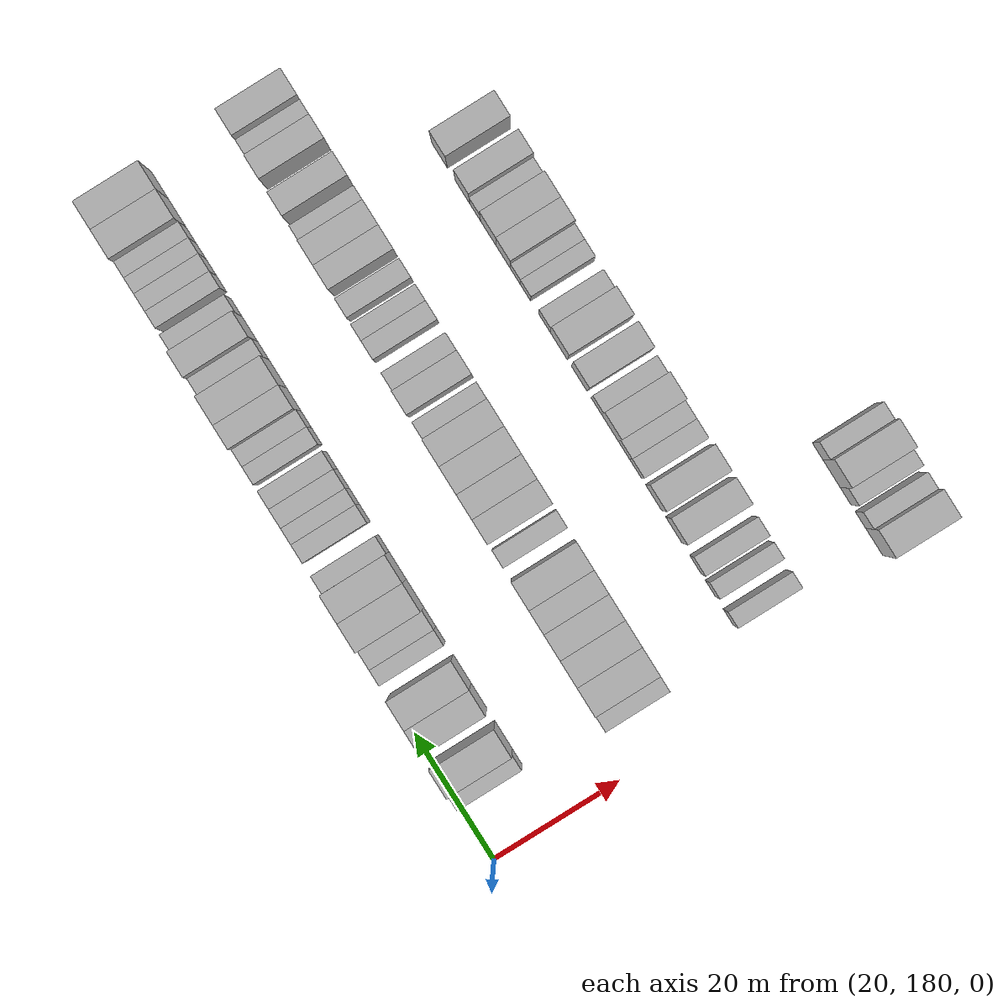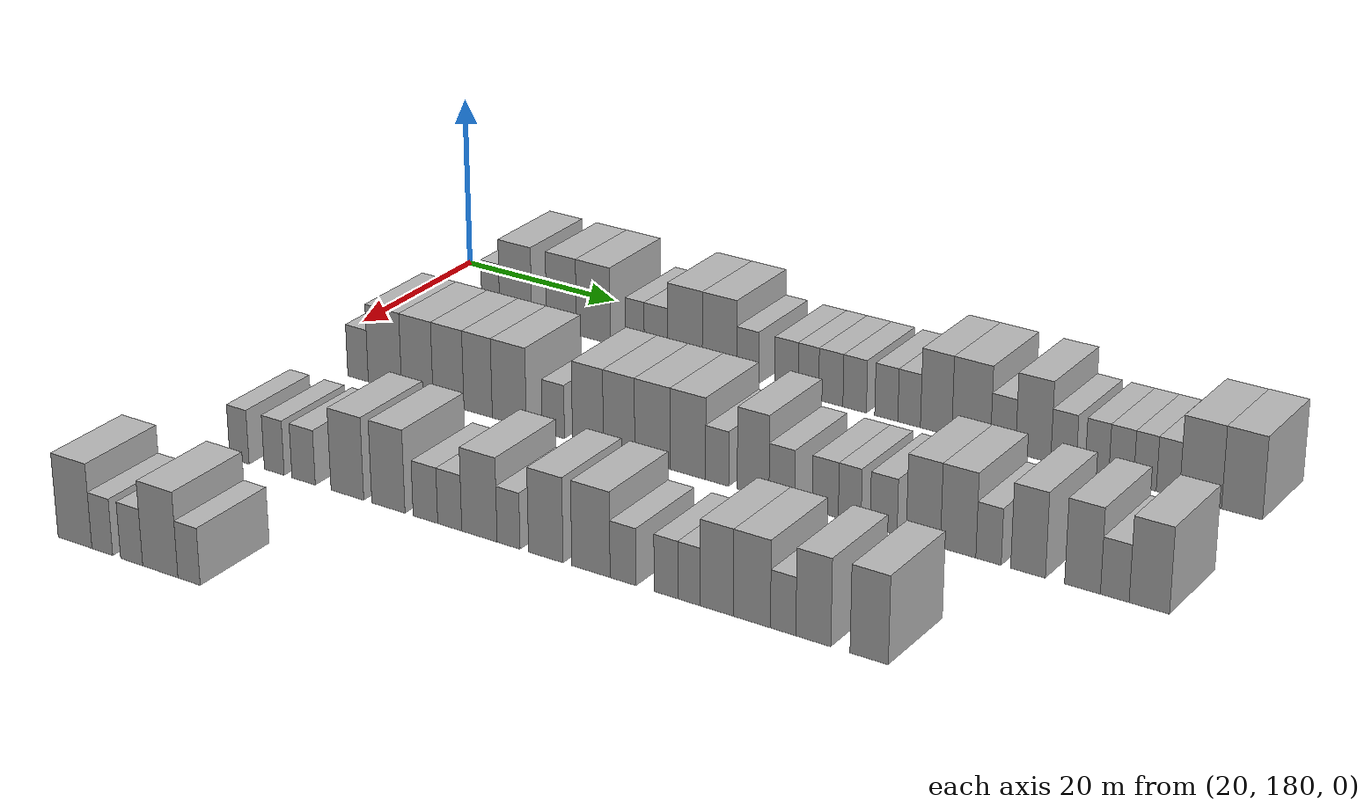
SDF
<sdf version="1.6">
 <world name="default">
  <model name="building_138">
   <static>1</static>
   <pose>25.0000 190.1696 0 0.000000 0.000000 0.000000</pose>
   <link name="link">
    <pose>0 0 3.00 0 0 0</pose>
    <collision name="collision"><geometry><box><size>10.0000 2.4469 6.0000</size></box></geometry></collision>
    <visual name="visual">
     <cast_shadows>0</cast_shadows>
     <geometry><box><size>10.0000 2.4469 6.0000</size></box></geometry>
     <material>
      <script>
       <uri>model://HANNAS_wall/materials/scripts</uri>
       <uri>model://HANNAS_wall/materials/textures</uri>
       <name>vrc/HANNAS_wall</name>
      </script>
     </material>
    </visual>
   </link>
  </model>
  <model name="building_139">
   <static>1</static>
   <pose>25.0000 193.5869 0 0.000000 0.000000 0.000000</pose>
   <link name="link">
    <pose>0 0 4.50 0 0 0</pose>
    <collision name="collision"><geometry><box><size>10.0000 4.3877 9.0000</size></box></geometry></collision>
    <visual name="visual">
     <cast_shadows>0</cast_shadows>
     <geometry><box><size>10.0000 4.3877 9.0000</size></box></geometry>
     <material>
      <script>
       <uri>model://HANNAS_wall/materials/scripts</uri>
       <uri>model://HANNAS_wall/materials/textures</uri>
       <name>vrc/HANNAS_wall</name>
      </script>
     </material>
    </visual>
   </link>
  </model>
  <model name="building_140">
   <static>1</static>
   <pose>25.0000 199.7810 0 0.000000 0.000000 0.000000</pose>
   <link name="link">
    <pose>0 0 4.50 0 0 0</pose>
    <collision name="collision"><geometry><box><size>10.0000 4.0006 9.0000</size></box></geometry></collision>
    <visual name="visual">
     <cast_shadows>0</cast_shadows>
     <geometry><box><size>10.0000 4.0006 9.0000</size></box></geometry>
     <material>
      <script>
       <uri>model://HANNAS_wall/materials/scripts</uri>
       <uri>model://HANNAS_wall/materials/textures</uri>
       <name>vrc/HANNAS_wall</name>
      </script>
     </material>
    </visual>
   </link>
  </model>
  <model name="building_141">
   <static>1</static>
   <pose>25.0000 204.0281 0 0.000000 0.000000 0.000000</pose>
   <link name="link">
    <pose>0 0 4.50 0 0 0</pose>
    <collision name="collision"><geometry><box><size>10.0000 4.4937 9.0000</size></box></geometry></collision>
    <visual name="visual">
     <cast_shadows>0</cast_shadows>
     <geometry><box><size>10.0000 4.4937 9.0000</size></box></geometry>
     <material>
      <script>
       <uri>model://HANNAS_wall/materials/scripts</uri>
       <uri>model://HANNAS_wall/materials/textures</uri>
       <name>vrc/HANNAS_wall</name>
      </script>
     </material>
    </visual>
   </link>
  </model>
  <model name="building_142">
   <static>1</static>
   <pose>25.0000 209.4953 0 0.000000 0.000000 0.000000</pose>
   <link name="link">
    <pose>0 0 3.00 0 0 0</pose>
    <collision name="collision"><geometry><box><size>10.0000 2.4405 6.0000</size></box></geometry></collision>
    <visual name="visual">
     <cast_shadows>0</cast_shadows>
     <geometry><box><size>10.0000 2.4405 6.0000</size></box></geometry>
     <material>
      <script>
       <uri>model://HANNAS_wall/materials/scripts</uri>
       <uri>model://HANNAS_wall/materials/textures</uri>
       <name>vrc/HANNAS_wall</name>
      </script>
     </material>
    </visual>
   </link>
  </model>
  <model name="building_143">
   <static>1</static>
   <pose>25.0000 212.2075 0 0.000000 0.000000 0.000000</pose>
   <link name="link">
    <pose>0 0 3.00 0 0 0</pose>
    <collision name="collision"><geometry><box><size>10.0000 2.9840 6.0000</size></box></geometry></collision>
    <visual name="visual">
     <cast_shadows>0</cast_shadows>
     <geometry><box><size>10.0000 2.9840 6.0000</size></box></geometry>
     <material>
      <script>
       <uri>model://HANNAS_wall/materials/scripts</uri>
       <uri>model://HANNAS_wall/materials/textures</uri>
       <name>vrc/HANNAS_wall</name>
      </script>
     </material>
    </visual>
   </link>
  </model>
  <model name="building_144">
   <static>1</static>
   <pose>25.0000 215.9325 0 0.000000 0.000000 0.000000</pose>
   <link name="link">
    <pose>0 0 4.50 0 0 0</pose>
    <collision name="collision"><geometry><box><size>10.0000 4.4659 9.0000</size></box></geometry></collision>
    <visual name="visual">
     <cast_shadows>0</cast_shadows>
     <geometry><box><size>10.0000 4.4659 9.0000</size></box></geometry>
     <material>
      <script>
       <uri>model://HANNAS_wall/materials/scripts</uri>
       <uri>model://HANNAS_wall/materials/textures</uri>
       <name>vrc/HANNAS_wall</name>
      </script>
     </material>
    </visual>
   </link>
  </model>
  <model name="building_145">
   <static>1</static>
   <pose>25.0000 220.3423 0 0.000000 0.000000 0.000000</pose>
   <link name="link">
    <pose>0 0 4.50 0 0 0</pose>
    <collision name="collision"><geometry><box><size>10.0000 4.3536 9.0000</size></box></geometry></collision>
    <visual name="visual">
     <cast_shadows>0</cast_shadows>
     <geometry><box><size>10.0000 4.3536 9.0000</size></box></geometry>
     <material>
      <script>
       <uri>model://HANNAS_wall/materials/scripts</uri>
       <uri>model://HANNAS_wall/materials/textures</uri>
       <name>vrc/HANNAS_wall</name>
      </script>
     </material>
    </visual>
   </link>
  </model>
  <model name="building_146">
   <static>1</static>
   <pose>25.0000 223.8910 0 0.000000 0.000000 0.000000</pose>
   <link name="link">
    <pose>0 0 3.00 0 0 0</pose>
    <collision name="collision"><geometry><box><size>10.0000 2.7438 6.0000</size></box></geometry></collision>
    <visual name="visual">
     <cast_shadows>0</cast_shadows>
     <geometry><box><size>10.0000 2.7438 6.0000</size></box></geometry>
     <material>
      <script>
       <uri>model://HANNAS_wall/materials/scripts</uri>
       <uri>model://HANNAS_wall/materials/textures</uri>
       <name>vrc/HANNAS_wall</name>
      </script>
     </material>
    </visual>
   </link>
  </model>
  <model name="building_147">
   <static>1</static>
   <pose>25.0000 228.6955 0 0.000000 0.000000 0.000000</pose>
   <link name="link">
    <pose>0 0 3.00 0 0 0</pose>
    <collision name="collision"><geometry><box><size>10.0000 2.8652 6.0000</size></box></geometry></collision>
    <visual name="visual">
     <cast_shadows>0</cast_shadows>
     <geometry><box><size>10.0000 2.8652 6.0000</size></box></geometry>
     <material>
      <script>
       <uri>model://HANNAS_wall/materials/scripts</uri>
       <uri>model://HANNAS_wall/materials/textures</uri>
       <name>vrc/HANNAS_wall</name>
      </script>
     </material>
    </visual>
   </link>
  </model>
  <model name="building_148">
   <static>1</static>
   <pose>25.0000 231.3929 0 0.000000 0.000000 0.000000</pose>
   <link name="link">
    <pose>0 0 3.00 0 0 0</pose>
    <collision name="collision"><geometry><box><size>10.0000 2.5295 6.0000</size></box></geometry></collision>
    <visual name="visual">
     <cast_shadows>0</cast_shadows>
     <geometry><box><size>10.0000 2.5295 6.0000</size></box></geometry>
     <material>
      <script>
       <uri>model://HANNAS_wall/materials/scripts</uri>
       <uri>model://HANNAS_wall/materials/textures</uri>
       <name>vrc/HANNAS_wall</name>
      </script>
     </material>
    </visual>
   </link>
  </model>
  <model name="building_149">
   <static>1</static>
   <pose>25.0000 234.1360 0 0.000000 0.000000 0.000000</pose>
   <link name="link">
    <pose>0 0 3.00 0 0 0</pose>
    <collision name="collision"><geometry><box><size>10.0000 2.9567 6.0000</size></box></geometry></collision>
    <visual name="visual">
     <cast_shadows>0</cast_shadows>
     <geometry><box><size>10.0000 2.9567 6.0000</size></box></geometry>
     <material>
      <script>
       <uri>model://HANNAS_wall/materials/scripts</uri>
       <uri>model://HANNAS_wall/materials/textures</uri>
       <name>vrc/HANNAS_wall</name>
      </script>
     </material>
    </visual>
   </link>
  </model>
  <model name="building_150">
   <static>1</static>
   <pose>25.0000 237.0279 0 0.000000 0.000000 0.000000</pose>
   <link name="link">
    <pose>0 0 3.00 0 0 0</pose>
    <collision name="collision"><geometry><box><size>10.0000 2.8272 6.0000</size></box></geometry></collision>
    <visual name="visual">
     <cast_shadows>0</cast_shadows>
     <geometry><box><size>10.0000 2.8272 6.0000</size></box></geometry>
     <material>
      <script>
       <uri>model://HANNAS_wall/materials/scripts</uri>
       <uri>model://HANNAS_wall/materials/textures</uri>
       <name>vrc/HANNAS_wall</name>
      </script>
     </material>
    </visual>
   </link>
  </model>
  <model name="building_151">
   <static>1</static>
   <pose>25.0000 240.8153 0 0.000000 0.000000 0.000000</pose>
   <link name="link">
    <pose>0 0 3.00 0 0 0</pose>
    <collision name="collision"><geometry><box><size>10.0000 2.7476 6.0000</size></box></geometry></collision>
    <visual name="visual">
     <cast_shadows>0</cast_shadows>
     <geometry><box><size>10.0000 2.7476 6.0000</size></box></geometry>
     <material>
      <script>
       <uri>model://HANNAS_wall/materials/scripts</uri>
       <uri>model://HANNAS_wall/materials/textures</uri>
       <name>vrc/HANNAS_wall</name>
      </script>
     </material>
    </visual>
   </link>
  </model>
  <model name="building_152">
   <static>1</static>
   <pose>25.0000 243.5218 0 0.000000 0.000000 0.000000</pose>
   <link name="link">
    <pose>0 0 3.00 0 0 0</pose>
    <collision name="collision"><geometry><box><size>10.0000 2.6653 6.0000</size></box></geometry></collision>
    <visual name="visual">
     <cast_shadows>0</cast_shadows>
     <geometry><box><size>10.0000 2.6653 6.0000</size></box></geometry>
     <material>
      <script>
       <uri>model://HANNAS_wall/materials/scripts</uri>
       <uri>model://HANNAS_wall/materials/textures</uri>
       <name>vrc/HANNAS_wall</name>
      </script>
     </material>
    </visual>
   </link>
  </model>
  <model name="building_153">
   <static>1</static>
   <pose>25.0000 246.6856 0 0.000000 0.000000 0.000000</pose>
   <link name="link">
    <pose>0 0 4.50 0 0 0</pose>
    <collision name="collision"><geometry><box><size>10.0000 3.6623 9.0000</size></box></geometry></collision>
    <visual name="visual">
     <cast_shadows>0</cast_shadows>
     <geometry><box><size>10.0000 3.6623 9.0000</size></box></geometry>
     <material>
      <script>
       <uri>model://HANNAS_wall/materials/scripts</uri>
       <uri>model://HANNAS_wall/materials/textures</uri>
       <name>vrc/HANNAS_wall</name>
      </script>
     </material>
    </visual>
   </link>
  </model>
  <model name="building_154">
   <static>1</static>
   <pose>25.0000 250.7521 0 0.000000 0.000000 0.000000</pose>
   <link name="link">
    <pose>0 0 4.50 0 0 0</pose>
    <collision name="collision"><geometry><box><size>10.0000 4.4706 9.0000</size></box></geometry></collision>
    <visual name="visual">
     <cast_shadows>0</cast_shadows>
     <geometry><box><size>10.0000 4.4706 9.0000</size></box></geometry>
     <material>
      <script>
       <uri>model://HANNAS_wall/materials/scripts</uri>
       <uri>model://HANNAS_wall/materials/textures</uri>
       <name>vrc/HANNAS_wall</name>
      </script>
     </material>
    </visual>
   </link>
  </model>
  <model name="building_155">
   <static>1</static>
   <pose>25.0000 254.4176 0 0.000000 0.000000 0.000000</pose>
   <link name="link">
    <pose>0 0 3.00 0 0 0</pose>
    <collision name="collision"><geometry><box><size>10.0000 2.8604 6.0000</size></box></geometry></collision>
    <visual name="visual">
     <cast_shadows>0</cast_shadows>
     <geometry><box><size>10.0000 2.8604 6.0000</size></box></geometry>
     <material>
      <script>
       <uri>model://HANNAS_wall/materials/scripts</uri>
       <uri>model://HANNAS_wall/materials/textures</uri>
       <name>vrc/HANNAS_wall</name>
      </script>
     </material>
    </visual>
   </link>
  </model>
  <model name="building_156">
   <static>1</static>
   <pose>25.0000 257.8368 0 0.000000 0.000000 0.000000</pose>
   <link name="link">
    <pose>0 0 4.50 0 0 0</pose>
    <collision name="collision"><geometry><box><size>10.0000 3.9780 9.0000</size></box></geometry></collision>
    <visual name="visual">
     <cast_shadows>0</cast_shadows>
     <geometry><box><size>10.0000 3.9780 9.0000</size></box></geometry>
     <material>
      <script>
       <uri>model://HANNAS_wall/materials/scripts</uri>
       <uri>model://HANNAS_wall/materials/textures</uri>
       <name>vrc/HANNAS_wall</name>
      </script>
     </material>
    </visual>
   </link>
  </model>
  <model name="building_157">
   <static>1</static>
   <pose>25.0000 261.2449 0 0.000000 0.000000 0.000000</pose>
   <link name="link">
    <pose>0 0 3.00 0 0 0</pose>
    <collision name="collision"><geometry><box><size>10.0000 2.8383 6.0000</size></box></geometry></collision>
    <visual name="visual">
     <cast_shadows>0</cast_shadows>
     <geometry><box><size>10.0000 2.8383 6.0000</size></box></geometry>
     <material>
      <script>
       <uri>model://HANNAS_wall/materials/scripts</uri>
       <uri>model://HANNAS_wall/materials/textures</uri>
       <name>vrc/HANNAS_wall</name>
      </script>
     </material>
    </visual>
   </link>
  </model>
  <model name="building_158">
   <static>1</static>
   <pose>25.0000 264.9707 0 0.000000 0.000000 0.000000</pose>
   <link name="link">
    <pose>0 0 3.00 0 0 0</pose>
    <collision name="collision"><geometry><box><size>10.0000 2.6133 6.0000</size></box></geometry></collision>
    <visual name="visual">
     <cast_shadows>0</cast_shadows>
     <geometry><box><size>10.0000 2.6133 6.0000</size></box></geometry>
     <material>
      <script>
       <uri>model://HANNAS_wall/materials/scripts</uri>
       <uri>model://HANNAS_wall/materials/textures</uri>
       <name>vrc/HANNAS_wall</name>
      </script>
     </material>
    </visual>
   </link>
  </model>
  <model name="building_159">
   <static>1</static>
   <pose>25.0000 267.6396 0 0.000000 0.000000 0.000000</pose>
   <link name="link">
    <pose>0 0 3.00 0 0 0</pose>
    <collision name="collision"><geometry><box><size>10.0000 2.7244 6.0000</size></box></geometry></collision>
    <visual name="visual">
     <cast_shadows>0</cast_shadows>
     <geometry><box><size>10.0000 2.7244 6.0000</size></box></geometry>
     <material>
      <script>
       <uri>model://HANNAS_wall/materials/scripts</uri>
       <uri>model://HANNAS_wall/materials/textures</uri>
       <name>vrc/HANNAS_wall</name>
      </script>
     </material>
    </visual>
   </link>
  </model>
  <model name="building_160">
   <static>1</static>
   <pose>25.0000 270.2384 0 0.000000 0.000000 0.000000</pose>
   <link name="link">
    <pose>0 0 3.00 0 0 0</pose>
    <collision name="collision"><geometry><box><size>10.0000 2.4733 6.0000</size></box></geometry></collision>
    <visual name="visual">
     <cast_shadows>0</cast_shadows>
     <geometry><box><size>10.0000 2.4733 6.0000</size></box></geometry>
     <material>
      <script>
       <uri>model://HANNAS_wall/materials/scripts</uri>
       <uri>model://HANNAS_wall/materials/textures</uri>
       <name>vrc/HANNAS_wall</name>
      </script>
     </material>
    </visual>
   </link>
  </model>
  <model name="building_161">
   <static>1</static>
   <pose>25.0000 272.7253 0 0.000000 0.000000 0.000000</pose>
   <link name="link">
    <pose>0 0 3.00 0 0 0</pose>
    <collision name="collision"><geometry><box><size>10.0000 2.5004 6.0000</size></box></geometry></collision>
    <visual name="visual">
     <cast_shadows>0</cast_shadows>
     <geometry><box><size>10.0000 2.5004 6.0000</size></box></geometry>
     <material>
      <script>
       <uri>model://HANNAS_wall/materials/scripts</uri>
       <uri>model://HANNAS_wall/materials/textures</uri>
       <name>vrc/HANNAS_wall</name>
      </script>
     </material>
    </visual>
   </link>
  </model>
  <model name="building_162">
   <static>1</static>
   <pose>25.0000 276.2206 0 0.000000 0.000000 0.000000</pose>
   <link name="link">
    <pose>0 0 4.50 0 0 0</pose>
    <collision name="collision"><geometry><box><size>10.0000 4.4903 9.0000</size></box></geometry></collision>
    <visual name="visual">
     <cast_shadows>0</cast_shadows>
     <geometry><box><size>10.0000 4.4903 9.0000</size></box></geometry>
     <material>
      <script>
       <uri>model://HANNAS_wall/materials/scripts</uri>
       <uri>model://HANNAS_wall/materials/textures</uri>
       <name>vrc/HANNAS_wall</name>
      </script>
     </material>
    </visual>
   </link>
  </model>
  <model name="building_163">
   <static>1</static>
   <pose>25.0000 280.6300 0 0.000000 0.000000 0.000000</pose>
   <link name="link">
    <pose>0 0 4.50 0 0 0</pose>
    <collision name="collision"><geometry><box><size>10.0000 4.3285 9.0000</size></box></geometry></collision>
    <visual name="visual">
     <cast_shadows>0</cast_shadows>
     <geometry><box><size>10.0000 4.3285 9.0000</size></box></geometry>
     <material>
      <script>
       <uri>model://HANNAS_wall/materials/scripts</uri>
       <uri>model://HANNAS_wall/materials/textures</uri>
       <name>vrc/HANNAS_wall</name>
      </script>
     </material>
    </visual>
   </link>
  </model>
  <model name="building_321">
   <static>1</static>
   <pose>47.0000 188.7465 0 0.000000 0.000000 0.000000</pose>
   <link name="link">
    <pose>0 0 3.00 0 0 0</pose>
    <collision name="collision"><geometry><box><size>10.0000 2.7599 6.0000</size></box></geometry></collision>
    <visual name="visual">
     <cast_shadows>0</cast_shadows>
     <geometry><box><size>10.0000 2.7599 6.0000</size></box></geometry>
     <material>
      <script>
       <uri>model://HANNAS_wall/materials/scripts</uri>
       <uri>model://HANNAS_wall/materials/textures</uri>
       <name>vrc/HANNAS_wall</name>
      </script>
     </material>
    </visual>
   </link>
  </model>
  <model name="building_322">
   <static>1</static>
   <pose>47.0000 192.3602 0 0.000000 0.000000 0.000000</pose>
   <link name="link">
    <pose>0 0 4.50 0 0 0</pose>
    <collision name="collision"><geometry><box><size>10.0000 4.4675 9.0000</size></box></geometry></collision>
    <visual name="visual">
     <cast_shadows>0</cast_shadows>
     <geometry><box><size>10.0000 4.4675 9.0000</size></box></geometry>
     <material>
      <script>
       <uri>model://HANNAS_wall/materials/scripts</uri>
       <uri>model://HANNAS_wall/materials/textures</uri>
       <name>vrc/HANNAS_wall</name>
      </script>
     </material>
    </visual>
   </link>
  </model>
  <model name="building_323">
   <static>1</static>
   <pose>47.0000 196.6636 0 0.000000 0.000000 0.000000</pose>
   <link name="link">
    <pose>0 0 4.50 0 0 0</pose>
    <collision name="collision"><geometry><box><size>10.0000 4.1393 9.0000</size></box></geometry></collision>
    <visual name="visual">
     <cast_shadows>0</cast_shadows>
     <geometry><box><size>10.0000 4.1393 9.0000</size></box></geometry>
     <material>
      <script>
       <uri>model://HANNAS_wall/materials/scripts</uri>
       <uri>model://HANNAS_wall/materials/textures</uri>
       <name>vrc/HANNAS_wall</name>
      </script>
     </material>
    </visual>
   </link>
  </model>
  <model name="building_324">
   <static>1</static>
   <pose>47.0000 200.7426 0 0.000000 0.000000 0.000000</pose>
   <link name="link">
    <pose>0 0 4.50 0 0 0</pose>
    <collision name="collision"><geometry><box><size>10.0000 4.0188 9.0000</size></box></geometry></collision>
    <visual name="visual">
     <cast_shadows>0</cast_shadows>
     <geometry><box><size>10.0000 4.0188 9.0000</size></box></geometry>
     <material>
      <script>
       <uri>model://HANNAS_wall/materials/scripts</uri>
       <uri>model://HANNAS_wall/materials/textures</uri>
       <name>vrc/HANNAS_wall</name>
      </script>
     </material>
    </visual>
   </link>
  </model>
  <model name="building_325">
   <static>1</static>
   <pose>47.0000 204.5798 0 0.000000 0.000000 0.000000</pose>
   <link name="link">
    <pose>0 0 4.50 0 0 0</pose>
    <collision name="collision"><geometry><box><size>10.0000 3.6557 9.0000</size></box></geometry></collision>
    <visual name="visual">
     <cast_shadows>0</cast_shadows>
     <geometry><box><size>10.0000 3.6557 9.0000</size></box></geometry>
     <material>
      <script>
       <uri>model://HANNAS_wall/materials/scripts</uri>
       <uri>model://HANNAS_wall/materials/textures</uri>
       <name>vrc/HANNAS_wall</name>
      </script>
     </material>
    </visual>
   </link>
  </model>
  <model name="building_326">
   <static>1</static>
   <pose>47.0000 208.5806 0 0.000000 0.000000 0.000000</pose>
   <link name="link">
    <pose>0 0 4.50 0 0 0</pose>
    <collision name="collision"><geometry><box><size>10.0000 4.3460 9.0000</size></box></geometry></collision>
    <visual name="visual">
     <cast_shadows>0</cast_shadows>
     <geometry><box><size>10.0000 4.3460 9.0000</size></box></geometry>
     <material>
      <script>
       <uri>model://HANNAS_wall/materials/scripts</uri>
       <uri>model://HANNAS_wall/materials/textures</uri>
       <name>vrc/HANNAS_wall</name>
      </script>
     </material>
    </visual>
   </link>
  </model>
  <model name="building_327">
   <static>1</static>
   <pose>47.0000 214.1381 0 0.000000 0.000000 0.000000</pose>
   <link name="link">
    <pose>0 0 3.00 0 0 0</pose>
    <collision name="collision"><geometry><box><size>10.0000 2.7690 6.0000</size></box></geometry></collision>
    <visual name="visual">
     <cast_shadows>0</cast_shadows>
     <geometry><box><size>10.0000 2.7690 6.0000</size></box></geometry>
     <material>
      <script>
       <uri>model://HANNAS_wall/materials/scripts</uri>
       <uri>model://HANNAS_wall/materials/textures</uri>
       <name>vrc/HANNAS_wall</name>
      </script>
     </material>
    </visual>
   </link>
  </model>
  <model name="building_328">
   <static>1</static>
   <pose>47.0000 218.4333 0 0.000000 0.000000 0.000000</pose>
   <link name="link">
    <pose>0 0 4.50 0 0 0</pose>
    <collision name="collision"><geometry><box><size>10.0000 3.8215 9.0000</size></box></geometry></collision>
    <visual name="visual">
     <cast_shadows>0</cast_shadows>
     <geometry><box><size>10.0000 3.8215 9.0000</size></box></geometry>
     <material>
      <script>
       <uri>model://HANNAS_wall/materials/scripts</uri>
       <uri>model://HANNAS_wall/materials/textures</uri>
       <name>vrc/HANNAS_wall</name>
      </script>
     </material>
    </visual>
   </link>
  </model>
  <model name="building_329">
   <static>1</static>
   <pose>47.0000 222.2573 0 0.000000 0.000000 0.000000</pose>
   <link name="link">
    <pose>0 0 4.50 0 0 0</pose>
    <collision name="collision"><geometry><box><size>10.0000 3.8265 9.0000</size></box></geometry></collision>
    <visual name="visual">
     <cast_shadows>0</cast_shadows>
     <geometry><box><size>10.0000 3.8265 9.0000</size></box></geometry>
     <material>
      <script>
       <uri>model://HANNAS_wall/materials/scripts</uri>
       <uri>model://HANNAS_wall/materials/textures</uri>
       <name>vrc/HANNAS_wall</name>
      </script>
     </material>
    </visual>
   </link>
  </model>
  <model name="building_330">
   <static>1</static>
   <pose>47.0000 226.3043 0 0.000000 0.000000 0.000000</pose>
   <link name="link">
    <pose>0 0 4.50 0 0 0</pose>
    <collision name="collision"><geometry><box><size>10.0000 4.2673 9.0000</size></box></geometry></collision>
    <visual name="visual">
     <cast_shadows>0</cast_shadows>
     <geometry><box><size>10.0000 4.2673 9.0000</size></box></geometry>
     <material>
      <script>
       <uri>model://HANNAS_wall/materials/scripts</uri>
       <uri>model://HANNAS_wall/materials/textures</uri>
       <name>vrc/HANNAS_wall</name>
      </script>
     </material>
    </visual>
   </link>
  </model>
  <model name="building_331">
   <static>1</static>
   <pose>47.0000 230.5475 0 0.000000 0.000000 0.000000</pose>
   <link name="link">
    <pose>0 0 4.50 0 0 0</pose>
    <collision name="collision"><geometry><box><size>10.0000 4.2192 9.0000</size></box></geometry></collision>
    <visual name="visual">
     <cast_shadows>0</cast_shadows>
     <geometry><box><size>10.0000 4.2192 9.0000</size></box></geometry>
     <material>
      <script>
       <uri>model://HANNAS_wall/materials/scripts</uri>
       <uri>model://HANNAS_wall/materials/textures</uri>
       <name>vrc/HANNAS_wall</name>
      </script>
     </material>
    </visual>
   </link>
  </model>
  <model name="building_332">
   <static>1</static>
   <pose>47.0000 234.0101 0 0.000000 0.000000 0.000000</pose>
   <link name="link">
    <pose>0 0 3.00 0 0 0</pose>
    <collision name="collision"><geometry><box><size>10.0000 2.7059 6.0000</size></box></geometry></collision>
    <visual name="visual">
     <cast_shadows>0</cast_shadows>
     <geometry><box><size>10.0000 2.7059 6.0000</size></box></geometry>
     <material>
      <script>
       <uri>model://HANNAS_wall/materials/scripts</uri>
       <uri>model://HANNAS_wall/materials/textures</uri>
       <name>vrc/HANNAS_wall</name>
      </script>
     </material>
    </visual>
   </link>
  </model>
  <model name="building_333">
   <static>1</static>
   <pose>47.0000 238.2064 0 0.000000 0.000000 0.000000</pose>
   <link name="link">
    <pose>0 0 4.50 0 0 0</pose>
    <collision name="collision"><geometry><box><size>10.0000 3.6867 9.0000</size></box></geometry></collision>
    <visual name="visual">
     <cast_shadows>0</cast_shadows>
     <geometry><box><size>10.0000 3.6867 9.0000</size></box></geometry>
     <material>
      <script>
       <uri>model://HANNAS_wall/materials/scripts</uri>
       <uri>model://HANNAS_wall/materials/textures</uri>
       <name>vrc/HANNAS_wall</name>
      </script>
     </material>
    </visual>
   </link>
  </model>
  <model name="building_334">
   <static>1</static>
   <pose>47.0000 241.5284 0 0.000000 0.000000 0.000000</pose>
   <link name="link">
    <pose>0 0 3.00 0 0 0</pose>
    <collision name="collision"><geometry><box><size>10.0000 2.9573 6.0000</size></box></geometry></collision>
    <visual name="visual">
     <cast_shadows>0</cast_shadows>
     <geometry><box><size>10.0000 2.9573 6.0000</size></box></geometry>
     <material>
      <script>
       <uri>model://HANNAS_wall/materials/scripts</uri>
       <uri>model://HANNAS_wall/materials/textures</uri>
       <name>vrc/HANNAS_wall</name>
      </script>
     </material>
    </visual>
   </link>
  </model>
  <model name="building_335">
   <static>1</static>
   <pose>47.0000 246.4794 0 0.000000 0.000000 0.000000</pose>
   <link name="link">
    <pose>0 0 3.00 0 0 0</pose>
    <collision name="collision"><geometry><box><size>10.0000 2.9448 6.0000</size></box></geometry></collision>
    <visual name="visual">
     <cast_shadows>0</cast_shadows>
     <geometry><box><size>10.0000 2.9448 6.0000</size></box></geometry>
     <material>
      <script>
       <uri>model://HANNAS_wall/materials/scripts</uri>
       <uri>model://HANNAS_wall/materials/textures</uri>
       <name>vrc/HANNAS_wall</name>
      </script>
     </material>
    </visual>
   </link>
  </model>
  <model name="building_336">
   <static>1</static>
   <pose>47.0000 249.2307 0 0.000000 0.000000 0.000000</pose>
   <link name="link">
    <pose>0 0 3.00 0 0 0</pose>
    <collision name="collision"><geometry><box><size>10.0000 2.5578 6.0000</size></box></geometry></collision>
    <visual name="visual">
     <cast_shadows>0</cast_shadows>
     <geometry><box><size>10.0000 2.5578 6.0000</size></box></geometry>
     <material>
      <script>
       <uri>model://HANNAS_wall/materials/scripts</uri>
       <uri>model://HANNAS_wall/materials/textures</uri>
       <name>vrc/HANNAS_wall</name>
      </script>
     </material>
    </visual>
   </link>
  </model>
  <model name="building_337">
   <static>1</static>
   <pose>47.0000 253.0079 0 0.000000 0.000000 0.000000</pose>
   <link name="link">
    <pose>0 0 3.00 0 0 0</pose>
    <collision name="collision"><geometry><box><size>10.0000 2.9966 6.0000</size></box></geometry></collision>
    <visual name="visual">
     <cast_shadows>0</cast_shadows>
     <geometry><box><size>10.0000 2.9966 6.0000</size></box></geometry>
     <material>
      <script>
       <uri>model://HANNAS_wall/materials/scripts</uri>
       <uri>model://HANNAS_wall/materials/textures</uri>
       <name>vrc/HANNAS_wall</name>
      </script>
     </material>
    </visual>
   </link>
  </model>
  <model name="building_338">
   <static>1</static>
   <pose>47.0000 257.3735 0 0.000000 0.000000 0.000000</pose>
   <link name="link">
    <pose>0 0 4.50 0 0 0</pose>
    <collision name="collision"><geometry><box><size>10.0000 3.7346 9.0000</size></box></geometry></collision>
    <visual name="visual">
     <cast_shadows>0</cast_shadows>
     <geometry><box><size>10.0000 3.7346 9.0000</size></box></geometry>
     <material>
      <script>
       <uri>model://HANNAS_wall/materials/scripts</uri>
       <uri>model://HANNAS_wall/materials/textures</uri>
       <name>vrc/HANNAS_wall</name>
      </script>
     </material>
    </visual>
   </link>
  </model>
  <model name="building_339">
   <static>1</static>
   <pose>47.0000 261.1581 0 0.000000 0.000000 0.000000</pose>
   <link name="link">
    <pose>0 0 4.50 0 0 0</pose>
    <collision name="collision"><geometry><box><size>10.0000 3.8346 9.0000</size></box></geometry></collision>
    <visual name="visual">
     <cast_shadows>0</cast_shadows>
     <geometry><box><size>10.0000 3.8346 9.0000</size></box></geometry>
     <material>
      <script>
       <uri>model://HANNAS_wall/materials/scripts</uri>
       <uri>model://HANNAS_wall/materials/textures</uri>
       <name>vrc/HANNAS_wall</name>
      </script>
     </material>
    </visual>
   </link>
  </model>
  <model name="building_340">
   <static>1</static>
   <pose>47.0000 264.4304 0 0.000000 0.000000 0.000000</pose>
   <link name="link">
    <pose>0 0 3.00 0 0 0</pose>
    <collision name="collision"><geometry><box><size>10.0000 2.7100 6.0000</size></box></geometry></collision>
    <visual name="visual">
     <cast_shadows>0</cast_shadows>
     <geometry><box><size>10.0000 2.7100 6.0000</size></box></geometry>
     <material>
      <script>
       <uri>model://HANNAS_wall/materials/scripts</uri>
       <uri>model://HANNAS_wall/materials/textures</uri>
       <name>vrc/HANNAS_wall</name>
      </script>
     </material>
    </visual>
   </link>
  </model>
  <model name="building_341">
   <static>1</static>
   <pose>47.0000 268.6170 0 0.000000 0.000000 0.000000</pose>
   <link name="link">
    <pose>0 0 4.50 0 0 0</pose>
    <collision name="collision"><geometry><box><size>10.0000 3.6632 9.0000</size></box></geometry></collision>
    <visual name="visual">
     <cast_shadows>0</cast_shadows>
     <geometry><box><size>10.0000 3.6632 9.0000</size></box></geometry>
     <material>
      <script>
       <uri>model://HANNAS_wall/materials/scripts</uri>
       <uri>model://HANNAS_wall/materials/textures</uri>
       <name>vrc/HANNAS_wall</name>
      </script>
     </material>
    </visual>
   </link>
  </model>
  <model name="building_342">
   <static>1</static>
   <pose>47.0000 274.2976 0 0.000000 0.000000 0.000000</pose>
   <link name="link">
    <pose>0 0 4.50 0 0 0</pose>
    <collision name="collision"><geometry><box><size>10.0000 3.6979 9.0000</size></box></geometry></collision>
    <visual name="visual">
     <cast_shadows>0</cast_shadows>
     <geometry><box><size>10.0000 3.6979 9.0000</size></box></geometry>
     <material>
      <script>
       <uri>model://HANNAS_wall/materials/scripts</uri>
       <uri>model://HANNAS_wall/materials/textures</uri>
       <name>vrc/HANNAS_wall</name>
      </script>
     </material>
    </visual>
   </link>
  </model>
  <model name="building_343">
   <static>1</static>
   <pose>47.0000 277.6134 0 0.000000 0.000000 0.000000</pose>
   <link name="link">
    <pose>0 0 3.00 0 0 0</pose>
    <collision name="collision"><geometry><box><size>10.0000 2.9338 6.0000</size></box></geometry></collision>
    <visual name="visual">
     <cast_shadows>0</cast_shadows>
     <geometry><box><size>10.0000 2.9338 6.0000</size></box></geometry>
     <material>
      <script>
       <uri>model://HANNAS_wall/materials/scripts</uri>
       <uri>model://HANNAS_wall/materials/textures</uri>
       <name>vrc/HANNAS_wall</name>
      </script>
     </material>
    </visual>
   </link>
  </model>
  <model name="building_344">
   <static>1</static>
   <pose>47.0000 281.1216 0 0.000000 0.000000 0.000000</pose>
   <link name="link">
    <pose>0 0 4.50 0 0 0</pose>
    <collision name="collision"><geometry><box><size>10.0000 4.0825 9.0000</size></box></geometry></collision>
    <visual name="visual">
     <cast_shadows>0</cast_shadows>
     <geometry><box><size>10.0000 4.0825 9.0000</size></box></geometry>
     <material>
      <script>
       <uri>model://HANNAS_wall/materials/scripts</uri>
       <uri>model://HANNAS_wall/materials/textures</uri>
       <name>vrc/HANNAS_wall</name>
      </script>
     </material>
    </visual>
   </link>
  </model>
  <model name="building_501">
   <static>1</static>
   <pose>69.0000 190.9447 0 0.000000 0.000000 0.000000</pose>
   <link name="link">
    <pose>0 0 3.00 0 0 0</pose>
    <collision name="collision"><geometry><box><size>10.0000 2.5085 6.0000</size></box></geometry></collision>
    <visual name="visual">
     <cast_shadows>0</cast_shadows>
     <geometry><box><size>10.0000 2.5085 6.0000</size></box></geometry>
     <material>
      <script>
       <uri>model://HANNAS_wall/materials/scripts</uri>
       <uri>model://HANNAS_wall/materials/textures</uri>
       <name>vrc/HANNAS_wall</name>
      </script>
     </material>
    </visual>
   </link>
  </model>
  <model name="building_502">
   <static>1</static>
   <pose>69.0000 195.4750 0 0.000000 0.000000 0.000000</pose>
   <link name="link">
    <pose>0 0 3.00 0 0 0</pose>
    <collision name="collision"><geometry><box><size>10.0000 2.5519 6.0000</size></box></geometry></collision>
    <visual name="visual">
     <cast_shadows>0</cast_shadows>
     <geometry><box><size>10.0000 2.5519 6.0000</size></box></geometry>
     <material>
      <script>
       <uri>model://HANNAS_wall/materials/scripts</uri>
       <uri>model://HANNAS_wall/materials/textures</uri>
       <name>vrc/HANNAS_wall</name>
      </script>
     </material>
    </visual>
   </link>
  </model>
  <model name="building_503">
   <static>1</static>
   <pose>69.0000 199.2334 0 0.000000 0.000000 0.000000</pose>
   <link name="link">
    <pose>0 0 3.00 0 0 0</pose>
    <collision name="collision"><geometry><box><size>10.0000 2.9650 6.0000</size></box></geometry></collision>
    <visual name="visual">
     <cast_shadows>0</cast_shadows>
     <geometry><box><size>10.0000 2.9650 6.0000</size></box></geometry>
     <material>
      <script>
       <uri>model://HANNAS_wall/materials/scripts</uri>
       <uri>model://HANNAS_wall/materials/textures</uri>
       <name>vrc/HANNAS_wall</name>
      </script>
     </material>
    </visual>
   </link>
  </model>
  <model name="building_504">
   <static>1</static>
   <pose>69.0000 204.7667 0 0.000000 0.000000 0.000000</pose>
   <link name="link">
    <pose>0 0 4.50 0 0 0</pose>
    <collision name="collision"><geometry><box><size>10.0000 4.1016 9.0000</size></box></geometry></collision>
    <visual name="visual">
     <cast_shadows>0</cast_shadows>
     <geometry><box><size>10.0000 4.1016 9.0000</size></box></geometry>
     <material>
      <script>
       <uri>model://HANNAS_wall/materials/scripts</uri>
       <uri>model://HANNAS_wall/materials/textures</uri>
       <name>vrc/HANNAS_wall</name>
      </script>
     </material>
    </visual>
   </link>
  </model>
  <model name="building_505">
   <static>1</static>
   <pose>69.0000 209.8641 0 0.000000 0.000000 0.000000</pose>
   <link name="link">
    <pose>0 0 4.50 0 0 0</pose>
    <collision name="collision"><geometry><box><size>10.0000 4.0931 9.0000</size></box></geometry></collision>
    <visual name="visual">
     <cast_shadows>0</cast_shadows>
     <geometry><box><size>10.0000 4.0931 9.0000</size></box></geometry>
     <material>
      <script>
       <uri>model://HANNAS_wall/materials/scripts</uri>
       <uri>model://HANNAS_wall/materials/textures</uri>
       <name>vrc/HANNAS_wall</name>
      </script>
     </material>
    </visual>
   </link>
  </model>
  <model name="building_506">
   <static>1</static>
   <pose>69.0000 214.4041 0 0.000000 0.000000 0.000000</pose>
   <link name="link">
    <pose>0 0 3.00 0 0 0</pose>
    <collision name="collision"><geometry><box><size>10.0000 2.9868 6.0000</size></box></geometry></collision>
    <visual name="visual">
     <cast_shadows>0</cast_shadows>
     <geometry><box><size>10.0000 2.9868 6.0000</size></box></geometry>
     <material>
      <script>
       <uri>model://HANNAS_wall/materials/scripts</uri>
       <uri>model://HANNAS_wall/materials/textures</uri>
       <name>vrc/HANNAS_wall</name>
      </script>
     </material>
    </visual>
   </link>
  </model>
  <model name="building_507">
   <static>1</static>
   <pose>69.0000 217.3478 0 0.000000 0.000000 0.000000</pose>
   <link name="link">
    <pose>0 0 3.00 0 0 0</pose>
    <collision name="collision"><geometry><box><size>10.0000 2.9006 6.0000</size></box></geometry></collision>
    <visual name="visual">
     <cast_shadows>0</cast_shadows>
     <geometry><box><size>10.0000 2.9006 6.0000</size></box></geometry>
     <material>
      <script>
       <uri>model://HANNAS_wall/materials/scripts</uri>
       <uri>model://HANNAS_wall/materials/textures</uri>
       <name>vrc/HANNAS_wall</name>
      </script>
     </material>
    </visual>
   </link>
  </model>
  <model name="building_508">
   <static>1</static>
   <pose>69.0000 220.9034 0 0.000000 0.000000 0.000000</pose>
   <link name="link">
    <pose>0 0 4.50 0 0 0</pose>
    <collision name="collision"><geometry><box><size>10.0000 4.2106 9.0000</size></box></geometry></collision>
    <visual name="visual">
     <cast_shadows>0</cast_shadows>
     <geometry><box><size>10.0000 4.2106 9.0000</size></box></geometry>
     <material>
      <script>
       <uri>model://HANNAS_wall/materials/scripts</uri>
       <uri>model://HANNAS_wall/materials/textures</uri>
       <name>vrc/HANNAS_wall</name>
      </script>
     </material>
    </visual>
   </link>
  </model>
  <model name="building_509">
   <static>1</static>
   <pose>69.0000 224.3570 0 0.000000 0.000000 0.000000</pose>
   <link name="link">
    <pose>0 0 3.00 0 0 0</pose>
    <collision name="collision"><geometry><box><size>10.0000 2.6965 6.0000</size></box></geometry></collision>
    <visual name="visual">
     <cast_shadows>0</cast_shadows>
     <geometry><box><size>10.0000 2.6965 6.0000</size></box></geometry>
     <material>
      <script>
       <uri>model://HANNAS_wall/materials/scripts</uri>
       <uri>model://HANNAS_wall/materials/textures</uri>
       <name>vrc/HANNAS_wall</name>
      </script>
     </material>
    </visual>
   </link>
  </model>
  <model name="building_510">
   <static>1</static>
   <pose>69.0000 228.7103 0 0.000000 0.000000 0.000000</pose>
   <link name="link">
    <pose>0 0 4.50 0 0 0</pose>
    <collision name="collision"><geometry><box><size>10.0000 4.0102 9.0000</size></box></geometry></collision>
    <visual name="visual">
     <cast_shadows>0</cast_shadows>
     <geometry><box><size>10.0000 4.0102 9.0000</size></box></geometry>
     <material>
      <script>
       <uri>model://HANNAS_wall/materials/scripts</uri>
       <uri>model://HANNAS_wall/materials/textures</uri>
       <name>vrc/HANNAS_wall</name>
      </script>
     </material>
    </visual>
   </link>
  </model>
  <model name="building_511">
   <static>1</static>
   <pose>69.0000 233.8974 0 0.000000 0.000000 0.000000</pose>
   <link name="link">
    <pose>0 0 4.50 0 0 0</pose>
    <collision name="collision"><geometry><box><size>10.0000 4.3640 9.0000</size></box></geometry></collision>
    <visual name="visual">
     <cast_shadows>0</cast_shadows>
     <geometry><box><size>10.0000 4.3640 9.0000</size></box></geometry>
     <material>
      <script>
       <uri>model://HANNAS_wall/materials/scripts</uri>
       <uri>model://HANNAS_wall/materials/textures</uri>
       <name>vrc/HANNAS_wall</name>
      </script>
     </material>
    </visual>
   </link>
  </model>
  <model name="building_512">
   <static>1</static>
   <pose>69.0000 237.5491 0 0.000000 0.000000 0.000000</pose>
   <link name="link">
    <pose>0 0 3.00 0 0 0</pose>
    <collision name="collision"><geometry><box><size>10.0000 2.9394 6.0000</size></box></geometry></collision>
    <visual name="visual">
     <cast_shadows>0</cast_shadows>
     <geometry><box><size>10.0000 2.9394 6.0000</size></box></geometry>
     <material>
      <script>
       <uri>model://HANNAS_wall/materials/scripts</uri>
       <uri>model://HANNAS_wall/materials/textures</uri>
       <name>vrc/HANNAS_wall</name>
      </script>
     </material>
    </visual>
   </link>
  </model>
  <model name="building_513">
   <static>1</static>
   <pose>69.0000 242.3369 0 0.000000 0.000000 0.000000</pose>
   <link name="link">
    <pose>0 0 3.00 0 0 0</pose>
    <collision name="collision"><geometry><box><size>10.0000 2.6361 6.0000</size></box></geometry></collision>
    <visual name="visual">
     <cast_shadows>0</cast_shadows>
     <geometry><box><size>10.0000 2.6361 6.0000</size></box></geometry>
     <material>
      <script>
       <uri>model://HANNAS_wall/materials/scripts</uri>
       <uri>model://HANNAS_wall/materials/textures</uri>
       <name>vrc/HANNAS_wall</name>
      </script>
     </material>
    </visual>
   </link>
  </model>
  <model name="building_514">
   <static>1</static>
   <pose>69.0000 244.8843 0 0.000000 0.000000 0.000000</pose>
   <link name="link">
    <pose>0 0 3.00 0 0 0</pose>
    <collision name="collision"><geometry><box><size>10.0000 2.4588 6.0000</size></box></geometry></collision>
    <visual name="visual">
     <cast_shadows>0</cast_shadows>
     <geometry><box><size>10.0000 2.4588 6.0000</size></box></geometry>
     <material>
      <script>
       <uri>model://HANNAS_wall/materials/scripts</uri>
       <uri>model://HANNAS_wall/materials/textures</uri>
       <name>vrc/HANNAS_wall</name>
      </script>
     </material>
    </visual>
   </link>
  </model>
  <model name="building_515">
   <static>1</static>
   <pose>69.0000 247.9210 0 0.000000 0.000000 0.000000</pose>
   <link name="link">
    <pose>0 0 4.50 0 0 0</pose>
    <collision name="collision"><geometry><box><size>10.0000 3.6145 9.0000</size></box></geometry></collision>
    <visual name="visual">
     <cast_shadows>0</cast_shadows>
     <geometry><box><size>10.0000 3.6145 9.0000</size></box></geometry>
     <material>
      <script>
       <uri>model://HANNAS_wall/materials/scripts</uri>
       <uri>model://HANNAS_wall/materials/textures</uri>
       <name>vrc/HANNAS_wall</name>
      </script>
     </material>
    </visual>
   </link>
  </model>
  <model name="building_516">
   <static>1</static>
   <pose>69.0000 251.7144 0 0.000000 0.000000 0.000000</pose>
   <link name="link">
    <pose>0 0 4.50 0 0 0</pose>
    <collision name="collision"><geometry><box><size>10.0000 3.9724 9.0000</size></box></geometry></collision>
    <visual name="visual">
     <cast_shadows>0</cast_shadows>
     <geometry><box><size>10.0000 3.9724 9.0000</size></box></geometry>
     <material>
      <script>
       <uri>model://HANNAS_wall/materials/scripts</uri>
       <uri>model://HANNAS_wall/materials/textures</uri>
       <name>vrc/HANNAS_wall</name>
      </script>
     </material>
    </visual>
   </link>
  </model>
  <model name="building_517">
   <static>1</static>
   <pose>69.0000 255.0478 0 0.000000 0.000000 0.000000</pose>
   <link name="link">
    <pose>0 0 3.00 0 0 0</pose>
    <collision name="collision"><geometry><box><size>10.0000 2.6945 6.0000</size></box></geometry></collision>
    <visual name="visual">
     <cast_shadows>0</cast_shadows>
     <geometry><box><size>10.0000 2.6945 6.0000</size></box></geometry>
     <material>
      <script>
       <uri>model://HANNAS_wall/materials/scripts</uri>
       <uri>model://HANNAS_wall/materials/textures</uri>
       <name>vrc/HANNAS_wall</name>
      </script>
     </material>
    </visual>
   </link>
  </model>
  <model name="building_518">
   <static>1</static>
   <pose>69.0000 258.2363 0 0.000000 0.000000 0.000000</pose>
   <link name="link">
    <pose>0 0 4.50 0 0 0</pose>
    <collision name="collision"><geometry><box><size>10.0000 3.6824 9.0000</size></box></geometry></collision>
    <visual name="visual">
     <cast_shadows>0</cast_shadows>
     <geometry><box><size>10.0000 3.6824 9.0000</size></box></geometry>
     <material>
      <script>
       <uri>model://HANNAS_wall/materials/scripts</uri>
       <uri>model://HANNAS_wall/materials/textures</uri>
       <name>vrc/HANNAS_wall</name>
      </script>
     </material>
    </visual>
   </link>
  </model>
  <model name="building_519">
   <static>1</static>
   <pose>69.0000 264.0510 0 0.000000 0.000000 0.000000</pose>
   <link name="link">
    <pose>0 0 4.50 0 0 0</pose>
    <collision name="collision"><geometry><box><size>10.0000 3.9470 9.0000</size></box></geometry></collision>
    <visual name="visual">
     <cast_shadows>0</cast_shadows>
     <geometry><box><size>10.0000 3.9470 9.0000</size></box></geometry>
     <material>
      <script>
       <uri>model://HANNAS_wall/materials/scripts</uri>
       <uri>model://HANNAS_wall/materials/textures</uri>
       <name>vrc/HANNAS_wall</name>
      </script>
     </material>
    </visual>
   </link>
  </model>
  <model name="building_675">
   <static>1</static>
   <pose>91.0000 189.0896 0 0.000000 0.000000 0.000000</pose>
   <link name="link">
    <pose>0 0 4.50 0 0 0</pose>
    <collision name="collision"><geometry><box><size>10.0000 4.3380 9.0000</size></box></geometry></collision>
    <visual name="visual">
     <cast_shadows>0</cast_shadows>
     <geometry><box><size>10.0000 4.3380 9.0000</size></box></geometry>
     <material>
      <script>
       <uri>model://HANNAS_wall/materials/scripts</uri>
       <uri>model://HANNAS_wall/materials/textures</uri>
       <name>vrc/HANNAS_wall</name>
      </script>
     </material>
    </visual>
   </link>
  </model>
  <model name="building_676">
   <static>1</static>
   <pose>91.0000 192.5804 0 0.000000 0.000000 0.000000</pose>
   <link name="link">
    <pose>0 0 3.00 0 0 0</pose>
    <collision name="collision"><geometry><box><size>10.0000 2.6436 6.0000</size></box></geometry></collision>
    <visual name="visual">
     <cast_shadows>0</cast_shadows>
     <geometry><box><size>10.0000 2.6436 6.0000</size></box></geometry>
     <material>
      <script>
       <uri>model://HANNAS_wall/materials/scripts</uri>
       <uri>model://HANNAS_wall/materials/textures</uri>
       <name>vrc/HANNAS_wall</name>
      </script>
     </material>
    </visual>
   </link>
  </model>
  <model name="building_677">
   <static>1</static>
   <pose>91.0000 196.2890 0 0.000000 0.000000 0.000000</pose>
   <link name="link">
    <pose>0 0 3.00 0 0 0</pose>
    <collision name="collision"><geometry><box><size>10.0000 2.7737 6.0000</size></box></geometry></collision>
    <visual name="visual">
     <cast_shadows>0</cast_shadows>
     <geometry><box><size>10.0000 2.7737 6.0000</size></box></geometry>
     <material>
      <script>
       <uri>model://HANNAS_wall/materials/scripts</uri>
       <uri>model://HANNAS_wall/materials/textures</uri>
       <name>vrc/HANNAS_wall</name>
      </script>
     </material>
    </visual>
   </link>
  </model>
  <model name="building_678">
   <static>1</static>
   <pose>91.0000 199.8626 0 0.000000 0.000000 0.000000</pose>
   <link name="link">
    <pose>0 0 4.50 0 0 0</pose>
    <collision name="collision"><geometry><box><size>10.0000 4.3735 9.0000</size></box></geometry></collision>
    <visual name="visual">
     <cast_shadows>0</cast_shadows>
     <geometry><box><size>10.0000 4.3735 9.0000</size></box></geometry>
     <material>
      <script>
       <uri>model://HANNAS_wall/materials/scripts</uri>
       <uri>model://HANNAS_wall/materials/textures</uri>
       <name>vrc/HANNAS_wall</name>
      </script>
     </material>
    </visual>
   </link>
  </model>
  <model name="building_679">
   <static>1</static>
   <pose>91.0000 203.4164 0 0.000000 0.000000 0.000000</pose>
   <link name="link">
    <pose>0 0 3.00 0 0 0</pose>
    <collision name="collision"><geometry><box><size>10.0000 2.7341 6.0000</size></box></geometry></collision>
    <visual name="visual">
     <cast_shadows>0</cast_shadows>
     <geometry><box><size>10.0000 2.7341 6.0000</size></box></geometry>
     <material>
      <script>
       <uri>model://HANNAS_wall/materials/scripts</uri>
       <uri>model://HANNAS_wall/materials/textures</uri>
       <name>vrc/HANNAS_wall</name>
      </script>
     </material>
    </visual>
   </link>
  </model>
 </world>
</sdf>
